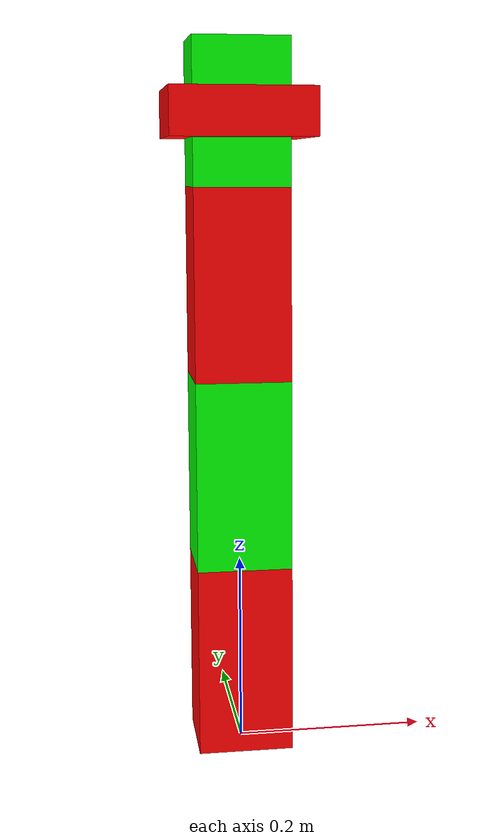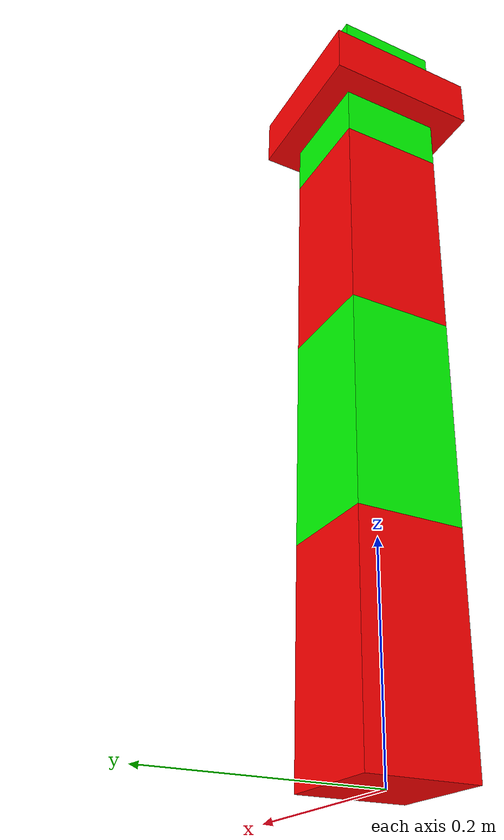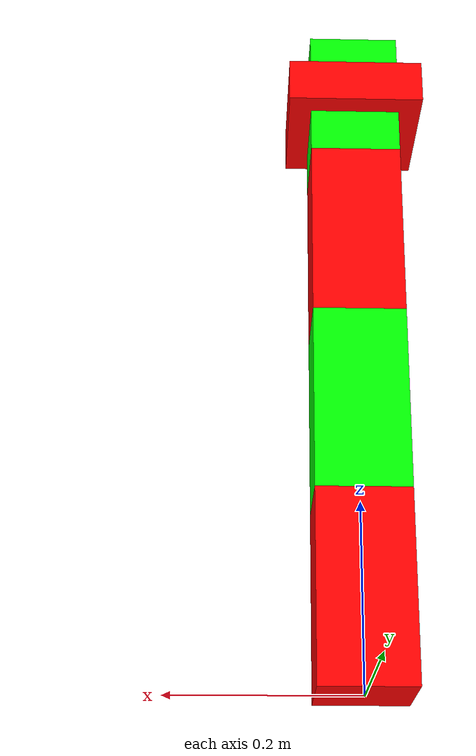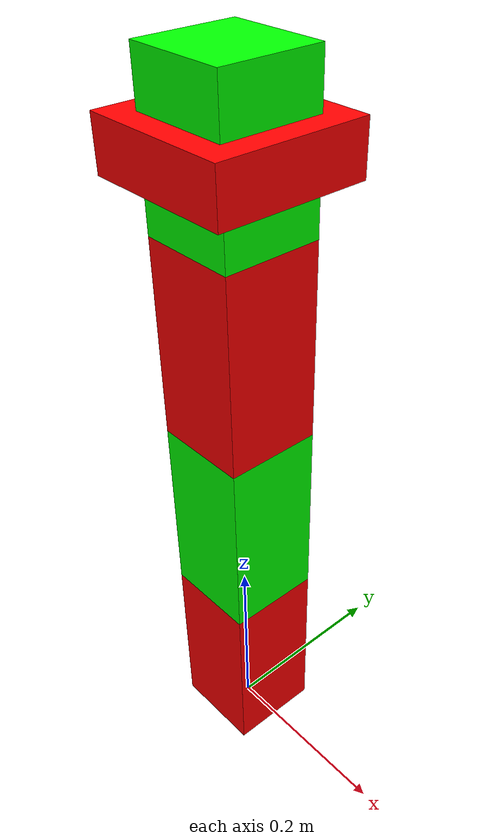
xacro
<?xml version="1.0"?>
<robot xmlns:xacro="http://www.ros.org/wiki/xacro" name="simple_six_axis_robot">

  <!-- ==================== macro setting ============================ -->
  <!-- link length -->
  <xacro:property name="link1_length" value="0.20"/>
  <xacro:property name="link2_length" value="0.20"/>
  <xacro:property name="link3_length" value="0.20"/>
  <xacro:property name="link4_length" value="0.05"/>
  <xacro:property name="link5_length" value="0.05"/>
  <xacro:property name="link6_length" value="0.05"/>

  <!-- link size -->
  <xacro:property name="link1_size" value="0.1"/>
  <xacro:property name="link2_size" value="0.1"/>
  <xacro:property name="link3_size" value="0.1"/>
  <xacro:property name="link4_size" value="0.1"/>
  <xacro:property name="link5_size" value="0.15"/>
  <xacro:property name="link6_size" value="0.1"/>

  <!-- joint offset -->
  <xacro:property name="joint1_offset" value="0"/>
  <xacro:property name="joint2_offset" value="${link1_length}"/>
  <xacro:property name="joint3_offset" value="${link2_length}"/>
  <xacro:property name="joint4_offset" value="${link3_length}"/>
  <xacro:property name="joint5_offset" value="${link4_length}"/>
  <xacro:property name="joint6_offset" value="${link5_length}"/>

  <!-- ================= gazebo setting ============================ -->
  <gazebo>
    <plugin filename="gz-sim-joint-state-publisher-system" name="gz::sim::systems::JointStatePublisher">
      <topic>joint_states</topic>
      <joint_name>joint1</joint_name>
      <joint_name>joint2</joint_name>
      <joint_name>joint3</joint_name>
      <joint_name>joint4</joint_name>
      <joint_name>joint5</joint_name>
      <joint_name>joint6</joint_name>
    </plugin>

    <plugin filename="gz-sim-joint-trajectory-controller-system" name="gz::sim::systems::JointTrajectoryController">
      <joint_name>joint1</joint_name>
      <initial_position>0.0</initial_position>
      <position_p_gain>20.0</position_p_gain>
      <position_i_gain>0.4</position_i_gain>
      <position_d_gain>1.0</position_d_gain>
      <position_i_min>-1</position_i_min>
      <position_i_max>1</position_i_max>
      <position_cmd_min>-20</position_cmd_min>
      <position_cmd_max>20</position_cmd_max>

      <joint_name>joint2</joint_name>
      <initial_position>0.0</initial_position>
      <position_p_gain>20.0</position_p_gain>
      <position_i_gain>0.4</position_i_gain>
      <position_d_gain>1.0</position_d_gain>
      <position_i_min>-1</position_i_min>
      <position_i_max>1</position_i_max>
      <position_cmd_min>-20</position_cmd_min>
      <position_cmd_max>20</position_cmd_max>

      <joint_name>joint3</joint_name>
      <initial_position>0.0</initial_position>
      <position_p_gain>20.0</position_p_gain>
      <position_i_gain>0.4</position_i_gain>
      <position_d_gain>1.0</position_d_gain>
      <position_i_min>-1</position_i_min>
      <position_i_max>1</position_i_max>
      <position_cmd_min>-20</position_cmd_min>
      <position_cmd_max>20</position_cmd_max>

      <joint_name>joint4</joint_name>
      <initial_position>0.0</initial_position>
      <position_p_gain>20.0</position_p_gain>
      <position_i_gain>0.4</position_i_gain>
      <position_d_gain>1.0</position_d_gain>
      <position_i_min>-1</position_i_min>
      <position_i_max>1</position_i_max>
      <position_cmd_min>-20</position_cmd_min>
      <position_cmd_max>20</position_cmd_max>

      <joint_name>joint5</joint_name>
      <initial_position>0.0</initial_position>
      <position_p_gain>20.0</position_p_gain>
      <position_i_gain>0.4</position_i_gain>
      <position_d_gain>1.0</position_d_gain>
      <position_i_min>-1</position_i_min>
      <position_i_max>1</position_i_max>
      <position_cmd_min>-20</position_cmd_min>
      <position_cmd_max>20</position_cmd_max>

      <joint_name>joint6</joint_name>
      <initial_position>0.0</initial_position>
      <position_p_gain>20.0</position_p_gain>
      <position_i_gain>0.4</position_i_gain>
      <position_d_gain>1.0</position_d_gain>
      <position_i_min>-1</position_i_min>
      <position_i_max>1</position_i_max>
      <position_cmd_min>-20</position_cmd_min>
      <position_cmd_max>20</position_cmd_max>
    </plugin>
  </gazebo>

  <gazebo reference="link1">
    <mu1>0.8</mu1>
    <mu2>0.8</mu2>
  </gazebo>
  <gazebo reference="link2">
    <mu1>0.8</mu1>
    <mu2>0.8</mu2>
  </gazebo>
  <gazebo reference="link3">
    <mu1>0.8</mu1>
    <mu2>0.8</mu2>
  </gazebo>
  <gazebo reference="link4">
    <mu1>0.8</mu1>
    <mu2>0.8</mu2>
  </gazebo>
  <gazebo reference="link5">
    <mu1>0.8</mu1>
    <mu2>0.8</mu2>
  </gazebo>
  <gazebo reference="link6">
    <mu1>0.8</mu1>
    <mu2>0.8</mu2>
  </gazebo>

  <!-- Set a contact sensor on the end-effector link -->
  <gazebo reference="link6">
    <sensor name="sensor_contact" type="contact">
      <contact>
        <!-- Specify "link_name_collision" (if a separate name is set for collision, specify that name) -->
        <collision>link6_collision</collision>
        <topic>/contact</topic>
      </contact>
      <always_on>1</always_on>
      <update_rate>100</update_rate>
    </sensor>
  </gazebo>

  <!-- ========== material setting ===========================-->
  <material name="green">
    <color rgba="0 1 0 1"/>
  </material>
  <material name="red">
    <color rgba="1 0 0 1"/>
  </material>

  <!-- ===================== link1 ==============================================-->
  <link name="link1">
    <visual>
      <origin xyz="0 0 ${link1_length/2}" rpy="0 0 0"/>
      <geometry>
        <box size="${link1_size} ${link1_size} ${link1_length}"/>
      </geometry>
      <material name="red"/>
    </visual>
    <collision>
      <origin xyz="0 0 ${link1_length/2}" rpy="0 0 0"/>
      <geometry>
        <box size="${link1_size} ${link1_size} ${link1_length}"/>
      </geometry>
    </collision>
    <inertial>
      <origin xyz="0 0 0" rpy="0 0 0"/>
      <mass value="0.01"/>
      <inertia ixx="0.000034533333" ixy="0" ixz="0"
               iyx="0" iyy="0.000034533333" iyz="0"
               izx="0" izy="0" izz="0.0000648"/>
    </inertial>
  </link>

  <!-- If you want to fix the arm to the gazebo world, define the world as a link and connect it to the base link -->
  <!-- (Just defining the world link is sufficient) -->
  <link name="world"/>
  <joint name="joint1" type="revolute">
    <parent link="world"/>
    <child  link="link1"/>
    <origin xyz="0 0 ${joint1_offset}" rpy="0 0 0"/>
    <axis  xyz="0 0 1"/>
    <limit lower="-3.14" upper="3.14" effort="10" velocity="10"/>
    <dynamics damping="1.0" friction="1.0"/>
  </joint>

  <!-- ===================== link2 ==============================================-->
  <link name="link2">
    <visual>
      <origin xyz="0 0 ${link2_length/2}" rpy="0 0 0"/>
      <geometry>
        <box size="${link2_size} ${link2_size} ${link2_length}"/>
      </geometry>
      <material name="green"/>
    </visual>
    <collision>
      <origin xyz="0 0 ${link2_length/2}" rpy="0 0 0"/>
      <geometry>
        <box size="${link2_size} ${link2_size} ${link2_length}"/>
      </geometry>
    </collision>
    <inertial>
      <origin xyz="0 0 0" rpy="0 0 0"/>
      <mass value="0.01"/>
      <inertia ixx="0.000034533333" ixy="0" ixz="0"
               iyx="0" iyy="0.000034533333" iyz="0"
               izx="0" izy="0" izz="0.0000648"/>
    </inertial>
  </link>

  <joint name="joint2" type="revolute">
    <parent link="link1"/>
    <child  link="link2"/>
    <origin xyz="0 0 ${joint2_offset}" rpy="0 0 0"/>
    <axis  xyz="0 1 0"/>
    <limit lower="-3.14" upper="3.14" effort="10" velocity="10"/>
    <dynamics damping="1.0" friction="1.0"/>
  </joint>

  <!-- ===================== link3 ==============================================-->
  <link name="link3">
    <visual>
      <origin xyz="0 0 ${link3_length/2}" rpy="0 0 0"/>
      <geometry>
        <box size="${link3_size} ${link3_size} ${link3_length}"/>
      </geometry>
      <material name="red"/>
    </visual>
    <collision>
      <origin xyz="0 0 ${link3_length/2}" rpy="0 0 0"/>
      <geometry>
        <box size="${link3_size} ${link3_size} ${link3_length}"/>
      </geometry>
    </collision>
    <inertial>
      <origin xyz="0 0 0" rpy="0 0 0"/>
      <mass value="0.01"/>
      <inertia ixx="0.000034533333" ixy="0" ixz="0"
               iyx="0" iyy="0.000034533333" iyz="0"
               izx="0" izy="0" izz="0.0000648"/>
    </inertial>
  </link>

  <joint name="joint3" type="revolute">
    <parent link="link2"/>
    <child  link="link3"/>
    <origin xyz="0 0 ${joint3_offset}" rpy="0 0 0"/>
    <axis  xyz="0 1 0"/>
    <limit lower="-3.14" upper="3.14" effort="10" velocity="10"/>
    <dynamics damping="1.0" friction="1.0"/>
  </joint>

  <!-- ===================== link4 ==============================================-->
  <link name="link4">
    <visual>
      <origin xyz="0 0 ${link4_length/2}" rpy="0 0 0"/>
      <geometry>
        <box size="${link4_size} ${link4_size} ${link4_length}"/>
      </geometry>
      <material name="green"/>
    </visual>
    <collision>
      <origin xyz="0 0 ${link4_length/2}" rpy="0 0 0"/>
      <geometry>
        <box size="${link4_size} ${link4_size} ${link4_length}"/>
      </geometry>
    </collision>
    <inertial>
      <origin xyz="0 0 0" rpy="0 0 0"/>
      <mass value="0.01"/>
      <inertia ixx="0.000034533333" ixy="0" ixz="0"
               iyx="0" iyy="0.000034533333" iyz="0"
               izx="0" izy="0" izz="0.0000648"/>
    </inertial>
  </link>

  <joint name="joint4" type="revolute">
    <parent link="link3"/>
    <child  link="link4"/>
    <origin xyz="0 0 ${joint4_offset}" rpy="0 0 0"/>
    <axis  xyz="0 0 1"/>
    <limit lower="-3.14" upper="3.14" effort="10" velocity="10"/>
    <dynamics damping="1.0" friction="1.0"/>
  </joint>

  <!-- ===================== link5 ==============================================-->
  <link name="link5">
    <visual>
      <origin xyz="0 0 ${link5_length/2}" rpy="0 0 0"/>
      <geometry>
        <box size="${link5_size} ${link5_size} ${link5_length}"/>
      </geometry>
      <material name="red"/>
    </visual>
    <collision>
      <origin xyz="0 0 ${link5_length/2}" rpy="0 0 0"/>
      <geometry>
        <box size="${link5_size} ${link5_size} ${link5_length}"/>
      </geometry>
    </collision>
    <inertial>
      <origin xyz="0 0 0" rpy="0 0 0"/>
      <mass value="0.01"/>
      <inertia ixx="0.000034533333" ixy="0" ixz="0"
               iyx="0" iyy="0.000034533333" iyz="0"
               izx="0" izy="0" izz="0.0000648"/>
    </inertial>
  </link>

  <joint name="joint5" type="revolute">
    <parent link="link4"/>
    <child  link="link5"/>
    <origin xyz="0 0 ${joint5_offset}" rpy="0 0 0"/>
    <axis  xyz="0 1 0"/>
    <limit lower="-3.14" upper="3.14" effort="10" velocity="10"/>
    <dynamics damping="1.0" friction="1.0"/>
  </joint>

  <!-- ===================== link6 ==============================================-->
  <link name="link6">
    <visual>
      <origin xyz="0 0 ${link6_length/2}" rpy="0 0 0"/>
      <geometry>
        <box size="${link6_size} ${link6_size} ${link6_length}"/>
      </geometry>
      <material name="green"/>
    </visual>
    <collision>
      <origin xyz="0 0 ${link6_length/2}" rpy="0 0 0"/>
      <geometry>
        <box size="${link6_size} ${link6_size} ${link6_length}"/>
      </geometry>
    </collision>
    <inertial>
      <origin xyz="0 0 0" rpy="0 0 0"/>
      <mass value="0.01"/>
      <inertia ixx="0.000034533333" ixy="0" ixz="0"
               iyx="0" iyy="0.000034533333" iyz="0"
               izx="0" izy="0" izz="0.0000648"/>
    </inertial>
  </link>

  <joint name="joint6" type="revolute">
    <parent link="link5"/>
    <child  link="link6"/>
    <origin xyz="0 0 ${joint6_offset}" rpy="0 0 0"/>
    <axis  xyz="0 0 1"/>
    <limit lower="-3.14" upper="3.14" effort="10" velocity="10"/>
    <dynamics damping="1.0" friction="1.0"/>
  </joint>

</robot>
